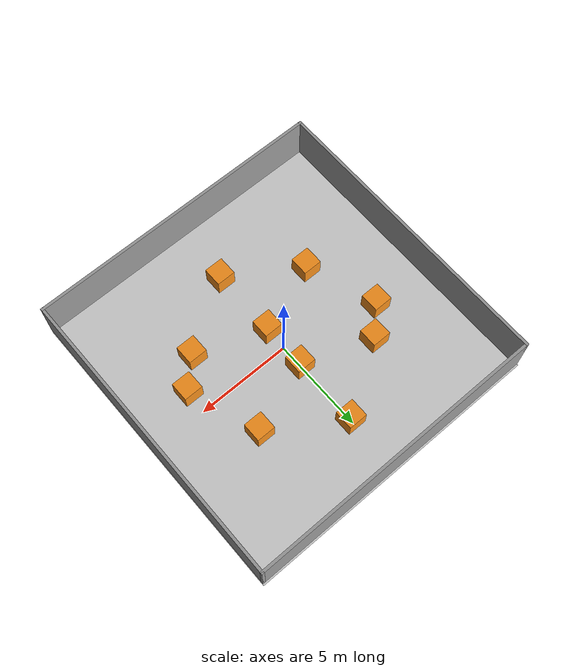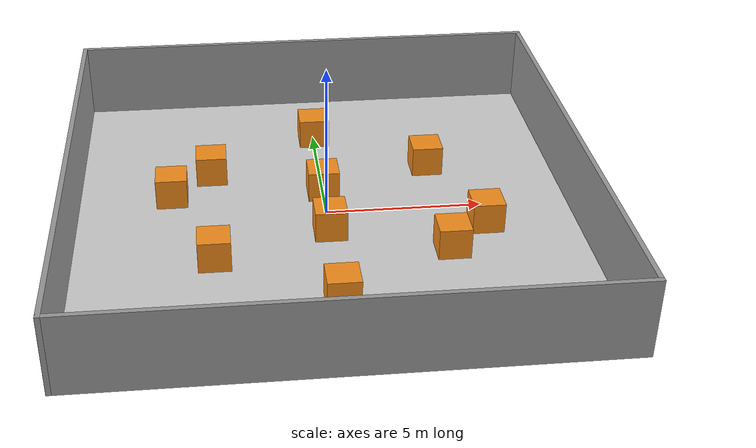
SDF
<sdf version='1.4'>
  <world name='field_world'>

    <include>
      <uri>model://sun</uri>
    </include>

    <model name="field_plane">
      <static>true</static>
      <link name="link">
        <pose>0 0 0 0 0 0</pose>
        <collision name="collision">
          <geometry>
            <plane>
              <normal>0 0 1</normal>
              <size>16 16</size>
            </plane>
          </geometry>
          <surface>
            <friction>
              <ode>
                <mu>100</mu>
                <mu2>50</mu2>
              </ode>
            </friction>
          </surface>
        </collision>
        <visual name="visual">
          <cast_shadows>false</cast_shadows>
          <geometry>
            <plane>
              <normal>0 0 1</normal>
              <size>16 16</size>
            </plane>
          </geometry>
          <material>
            <script>
            </script>
          </material>
        </visual>
      </link>
    </model>

    <physics type="ode">
      <gravity>0 0 -9.8066</gravity>
      <max_step_size>0.001</max_step_size>
      <real_time_update_rate>1000</real_time_update_rate>
    </physics>

    <model name='square_walls'>
      <pose frame=''>-0.023525 -0.082141 0 0 -0 0</pose>
      <link name='Wall_31'>
        <collision name='Wall_31_Collision'>
          <geometry>
            <box>
              <size>16 0.15 2.5</size>
            </box>
          </geometry>
          <pose frame=''>0 0 1.25 0 -0 0</pose>
          <max_contacts>10</max_contacts>
          <surface>
            <contact>
              <ode/>
            </contact>
            <bounce/>
            <friction>
              <torsional>
                <ode/>
              </torsional>
              <ode/>
            </friction>
          </surface>
        </collision>
        <visual name='Wall_31_Visual'>
          <pose frame=''>0 0 1.25 0 -0 0</pose>
          <geometry>
            <box>
              <size>16 0.15 2.5</size>
            </box>
          </geometry>
          <material>
            <script>
              <uri>file://media/materials/scripts/gazebo.material</uri>
              <name>Gazebo/Grey</name>
            </script>
            <ambient>1 1 1 1</ambient>
          </material>
          <meta>
            <layer>0</layer>
          </meta>
        </visual>
        <pose frame=''>0 -7.925 0 0 -0 0</pose>
        <self_collide>0</self_collide>
        <enable_wind>0</enable_wind>
        <kinematic>0</kinematic>
      </link>
      <link name='Wall_33'>
        <collision name='Wall_33_Collision'>
          <geometry>
            <box>
              <size>16 0.15 2.5</size>
            </box>
          </geometry>
          <pose frame=''>0 0 1.25 0 -0 0</pose>
          <max_contacts>10</max_contacts>
          <surface>
            <contact>
              <ode/>
            </contact>
            <bounce/>
            <friction>
              <torsional>
                <ode/>
              </torsional>
              <ode/>
            </friction>
          </surface>
        </collision>
        <visual name='Wall_33_Visual'>
          <pose frame=''>0 0 1.25 0 -0 0</pose>
          <geometry>
            <box>
              <size>16 0.15 2.5</size>
            </box>
          </geometry>
          <material>
            <script>
              <uri>file://media/materials/scripts/gazebo.material</uri>
              <name>Gazebo/Grey</name>
            </script>
            <ambient>1 1 1 1</ambient>
          </material>
          <meta>
            <layer>0</layer>
          </meta>
        </visual>
        <pose frame=''>7.925 0 0 0 -0 1.5708</pose>
        <self_collide>0</self_collide>
        <enable_wind>0</enable_wind>
        <kinematic>0</kinematic>
      </link>
      <link name='Wall_35'>
        <collision name='Wall_35_Collision'>
          <geometry>
            <box>
              <size>16 0.15 2.5</size>
            </box>
          </geometry>
          <pose frame=''>0 0 1.25 0 -0 0</pose>
          <max_contacts>10</max_contacts>
          <surface>
            <contact>
              <ode/>
            </contact>
            <bounce/>
            <friction>
              <torsional>
                <ode/>
              </torsional>
              <ode/>
            </friction>
          </surface>
        </collision>
        <visual name='Wall_35_Visual'>
          <pose frame=''>0 0 1.25 0 -0 0</pose>
          <geometry>
            <box>
              <size>16 0.15 2.5</size>
            </box>
          </geometry>
          <material>
            <script>
              <uri>file://media/materials/scripts/gazebo.material</uri>
              <name>Gazebo/Grey</name>
            </script>
            <ambient>1 1 1 1</ambient>
          </material>
          <meta>
            <layer>0</layer>
          </meta>
        </visual>
        <pose frame=''>-7.925 0 0 0 -0 1.5708</pose>
        <self_collide>0</self_collide>
        <enable_wind>0</enable_wind>
        <kinematic>0</kinematic>
      </link>

      <link name='Wall_41'>
        <collision name='Wall_41_Collision'>
          <geometry>
            <box>
              <size>16 0.15 2.5</size>
            </box>
          </geometry>
          <pose frame=''>0 0 1.25 0 -0 0</pose>
          <max_contacts>10</max_contacts>
          <surface>
            <contact>
              <ode/>
            </contact>
            <bounce/>
            <friction>
              <torsional>
                <ode/>
              </torsional>
              <ode/>
            </friction>
          </surface>
        </collision>
        <visual name='Wall_41_Visual'>
          <pose frame=''>0 0 1.25 0 -0 0</pose>
          <geometry>
            <box>
              <size>16 0.15 2.5</size>
            </box>
          </geometry>
          <material>
            <script>
              <uri>file://media/materials/scripts/gazebo.material</uri>
              <name>Gazebo/Grey</name>
            </script>
            <ambient>1 1 1 1</ambient>
          </material>
          <meta>
            <layer>0</layer>
          </meta>
        </visual>
        <pose frame=''>0 7.925 0 0 -0 0</pose>
        <self_collide>0</self_collide>
        <enable_wind>0</enable_wind>
        <kinematic>0</kinematic>
      </link>
      <static>1</static>
    </model>

    <model name='box1'>
      <pose frame=''>3.6 2.5 0.5 0 -0 0</pose>
      <link name='link'>
        <inertial>
          <mass>1000</mass>
        </inertial>
        <collision name='collision'>
          <geometry>
            <box>
              <size>1 1 1</size>
            </box>
          </geometry>
          <max_contacts>10</max_contacts>
        </collision>
        <visual name='visual'>
          <geometry>
            <box>
              <size>1 1 1</size>
            </box>
          </geometry>
          <material>
            <script>
              <name>Gazebo/Orange</name>
              <uri>file://media/materials/scripts/gazebo.material</uri>
            </script>
          </material>
        </visual>
      </link>
    </model>

        <model name='box2'>
      <pose frame=''>3.6 -2.5 0.5 0 -0 0</pose>
      <link name='link'>
        <inertial>
          <mass>1000</mass>
        </inertial>
        <collision name='collision'>
          <geometry>
            <box>
              <size>1 1 1</size>
            </box>
          </geometry>
          <max_contacts>10</max_contacts>
        </collision>
        <visual name='visual'>
          <geometry>
            <box>
              <size>1 1 1</size>
            </box>
          </geometry>
          <material>
            <script>
              <name>Gazebo/Orange</name>
              <uri>file://media/materials/scripts/gazebo.material</uri>
            </script>
          </material>
        </visual>
      </link>
    </model>

    <model name='box3'>
      <pose frame=''>-3.6 2.5 0.5 0 -0 0</pose>
      <link name='link'>
        <inertial>
          <mass>1000</mass>
        </inertial>
        <collision name='collision'>
          <geometry>
            <box>
              <size>1 1 1</size>
            </box>
          </geometry>
          <max_contacts>10</max_contacts>
        </collision>
        <visual name='visual'>
          <geometry>
            <box>
              <size>1 1 1</size>
            </box>
          </geometry>
          <material>
            <script>
              <name>Gazebo/Orange</name>
              <uri>file://media/materials/scripts/gazebo.material</uri>
            </script>
          </material>
        </visual>
      </link>
    </model>

    <model name='box4'>
      <pose frame=''>-3.6 -2.5 0.5 0 -0 0</pose>
      <link name='link'>
        <inertial>
          <mass>1000</mass>
        </inertial>
        <collision name='collision'>
          <geometry>
            <box>
              <size>1 1 1</size>
            </box>
          </geometry>
          <max_contacts>10</max_contacts>
        </collision>
        <visual name='visual'>
          <geometry>
            <box>
              <size>1 1 1</size>
            </box>
          </geometry>
          <material>
            <script>
              <name>Gazebo/Orange</name>
              <uri>file://media/materials/scripts/gazebo.material</uri>
            </script>
          </material>
        </visual>
      </link>
    </model>

    <model name='box5'>
      <pose frame=''>0 -4.8 0.5 0 -0 0</pose>
      <link name='link'>
        <inertial>
          <mass>1000</mass>
        </inertial>
        <collision name='collision'>
          <geometry>
            <box>
              <size>1 1 1</size>
            </box>
          </geometry>
          <max_contacts>10</max_contacts>
        </collision>
        <visual name='visual'>
          <geometry>
            <box>
              <size>1 1 1</size>
            </box>
          </geometry>
          <material>
            <script>
              <name>Gazebo/Orange</name>
              <uri>file://media/materials/scripts/gazebo.material</uri>
            </script>
          </material>
        </visual>
      </link>
    </model>

    <model name='box6'>
      <pose frame=''>0 4.8 0.5 0 -0 0</pose>
      <link name='link'>
        <inertial>
          <mass>1000</mass>
        </inertial>
        <collision name='collision'>
          <geometry>
            <box>
              <size>1 1 1</size>
            </box>
          </geometry>
          <max_contacts>10</max_contacts>
        </collision>
        <visual name='visual'>
          <geometry>
            <box>
              <size>1 1 1</size>
            </box>
          </geometry>
          <material>
            <script>
              <name>Gazebo/Orange</name>
              <uri>file://media/materials/scripts/gazebo.material</uri>
            </script>
          </material>
        </visual>
      </link>
    </model>

    <model name='box7'>
      <pose frame=''>4.9 -1.2 0.5 0 -0 0</pose>
      <link name='link'>
        <inertial>
          <mass>1000</mass>
        </inertial>
        <collision name='collision'>
          <geometry>
            <box>
              <size>1 1 1</size>
            </box>
          </geometry>
          <max_contacts>10</max_contacts>
        </collision>
        <visual name='visual'>
          <geometry>
            <box>
              <size>1 1 1</size>
            </box>
          </geometry>
          <material>
            <script>
              <name>Gazebo/Orange</name>
              <uri>file://media/materials/scripts/gazebo.material</uri>
            </script>
          </material>
        </visual>
      </link>
    </model>

    <model name='box8'>
      <pose frame=''>-4.9 1.2 0.5 0 -0 0</pose>
      <link name='link'>
        <inertial>
          <mass>1000</mass>
        </inertial>
        <collision name='collision'>
          <geometry>
            <box>
              <size>1 1 1</size>
            </box>
          </geometry>
          <max_contacts>10</max_contacts>
        </collision>
        <visual name='visual'>
          <geometry>
            <box>
              <size>1 1 1</size>
            </box>
          </geometry>
          <material>
            <script>
              <name>Gazebo/Orange</name>
              <uri>file://media/materials/scripts/gazebo.material</uri>
            </script>
          </material>
        </visual>
      </link>
    </model>

    <model name='box9'>
      <pose frame=''>0 -1.2 0.5 0 -0 0</pose>
      <link name='link'>
        <inertial>
          <mass>1000</mass>
        </inertial>
        <collision name='collision'>
          <geometry>
            <box>
              <size>1 1 1</size>
            </box>
          </geometry>
          <max_contacts>10</max_contacts>
        </collision>
        <visual name='visual'>
          <geometry>
            <box>
              <size>1 1 1</size>
            </box>
          </geometry>
          <material>
            <script>
              <name>Gazebo/Orange</name>
              <uri>file://media/materials/scripts/gazebo.material</uri>
            </script>
          </material>
        </visual>
      </link>
    </model>

    <model name='box10'>
      <pose frame=''>0 1.2 0.5 0 -0 0</pose>
      <link name='link'>
        <inertial>
          <mass>1000</mass>
        </inertial>
        <collision name='collision'>
          <geometry>
            <box>
              <size>1 1 1</size>
            </box>
          </geometry>
          <max_contacts>10</max_contacts>
        </collision>
        <visual name='visual'>
          <geometry>
            <box>
              <size>1 1 1</size>
            </box>
          </geometry>
          <material>
            <script>
              <name>Gazebo/Orange</name>
              <uri>file://media/materials/scripts/gazebo.material</uri>
            </script>
          </material>
        </visual>
      </link>
    </model>

  </world>
</sdf>
